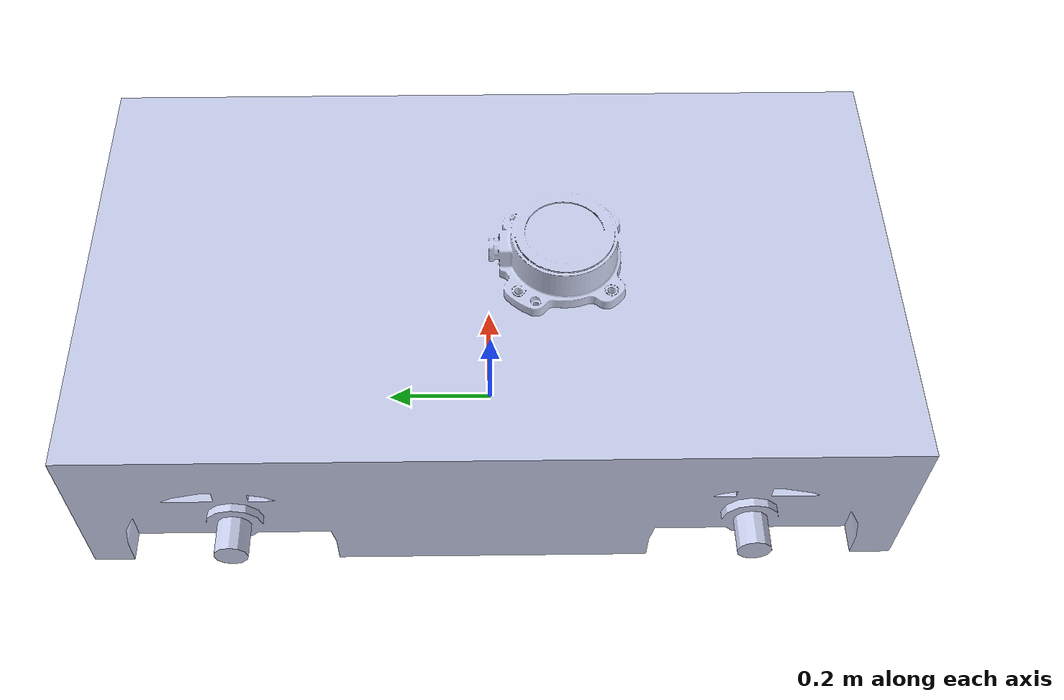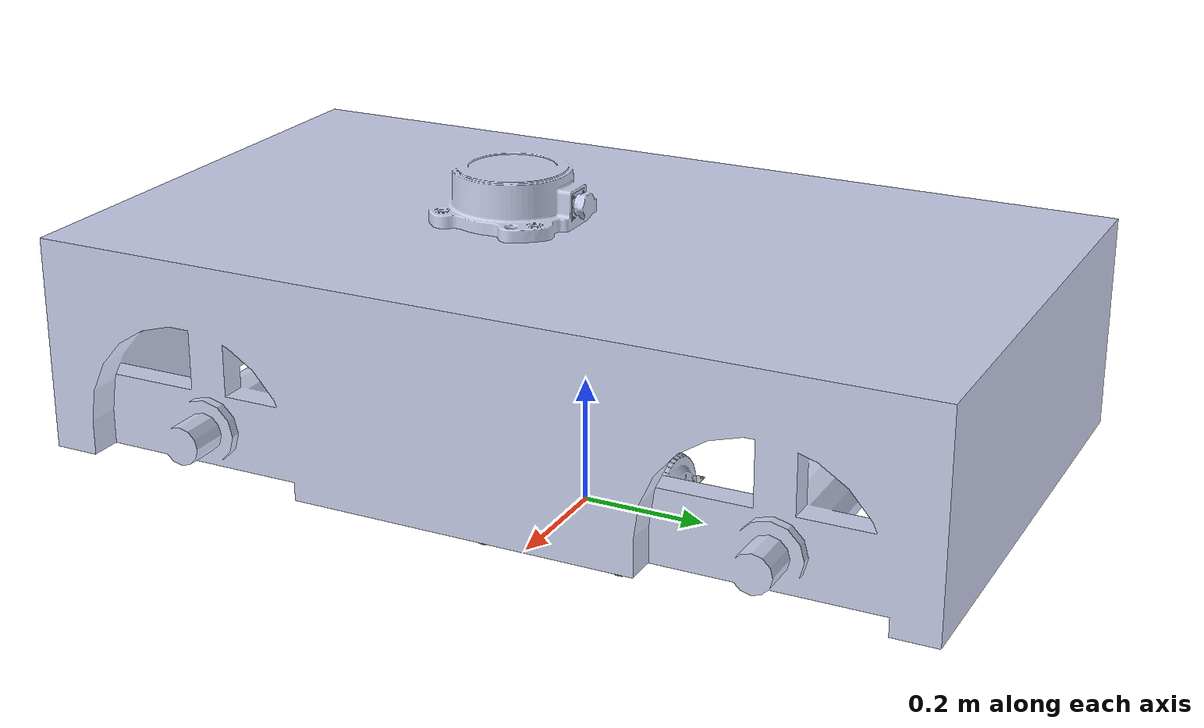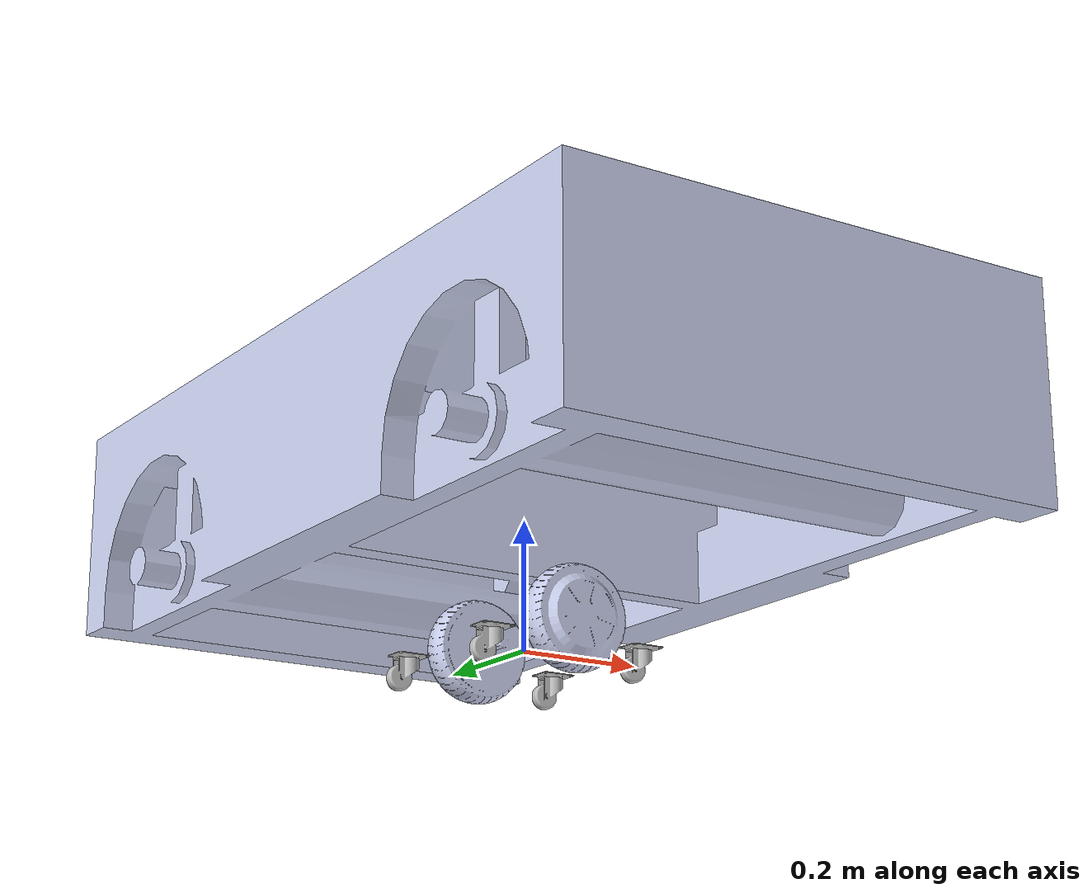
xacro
<?xml version="1.0" ?>
<robot xmlns:xacro="http://www.ros.org/wiki/xacro" name="Robot_urdf">

  <link name="base_link">
  </link>

  <joint name="base_footprint_joint" type="fixed">
    <parent link="base_link"/>
    <child link="base_footprint"/>
    <origin xyz="0 0 0" rpy="0 0 0"/>
  </joint>

  <link name="base_footprint">
  </link>

  <joint name="chassis_joint" type="fixed">
    <parent link="base_link"/>
    <child link="chassis_link"/>
    <origin xyz="0 0 0"/>
  </joint>

  <link
    name="chassis_link">
    <inertial>
      <origin
        xyz="0.00912083979047776 0.000358714426882123 0.425751573589943"
        rpy="0 0 0" />
      <mass
        value="21.9733644667016" />
      <inertia
        ixx="0.358557390766616"
        ixy="0.000472307216723667"
        ixz="6.84397024655851E-05"
        iyy="0.266139102966601"
        iyz="0.000173925654301657"
        izz="0.43074770645242" />
    </inertial>
    <visual>
      <origin
        xyz="0 0 0"
        rpy="0 0 0" />
      <geometry>
        <mesh
          filename="package://robot_description/meshes/base_link.STL" />
      </geometry>
      <material
        name="">
        <color
          rgba="0.792156862745098 0.819607843137255 0.933333333333333 1" />
      </material>
    </visual>
    <collision>
      <origin
        xyz="0 0 0"
        rpy="0 0 0" />
      <geometry>
        <mesh
          filename="package://robot_description/meshes/base_link.STL" />
      </geometry>
    </collision>
  </link>
  <link
    name="left_wheel">
    <inertial>
      <origin
        xyz="1.87773158133453E-10 -7.27151445151231E-06 -0.0301454992417853"
        rpy="0 0 0" />
      <mass
        value="0.958023999456363" />
      <inertia
        ixx="0.00158537256786763"
        ixy="-1.05121947037335E-11"
        ixz="-9.89197150400186E-13"
        iyy="0.00158540696032752"
        iyz="-3.83261379612538E-07"
        izz="0.00270273970228439" />
    </inertial>
    <visual>
      <origin
        xyz="0 0 0"
        rpy="0 0 0" />
      <geometry>
        <mesh
          filename="package://robot_description/meshes/left_wheel.STL" />
      </geometry>
      <material
        name="">
        <color
          rgba="0.792156862745098 0.819607843137255 0.933333333333333 1" />
      </material>
    </visual>
    <collision>
      <origin
        xyz="0 0 0"
        rpy="0 0 0" />
      <geometry>
        <mesh
          filename="package://robot_description/meshes/left_wheel.STL" />
      </geometry>
    </collision>
  </link>
  <joint
    name="left_wheel_joint"
    type="continuous">
    <origin
      xyz="0.000367906570314269 0.164630045584552 0.0242699999999989"
      rpy="-1.5707963267949 0 0" />
    <parent
      link="base_link" />
    <child
      link="left_wheel" />
    <axis
      xyz="0 0 1" />
  </joint>
  <link
    name="right_wheel">
    <inertial>
      <origin
        xyz="-1.8914336763487E-10 7.27151444643304E-06 -0.0301454992409286"
        rpy="0 0 0" />
      <mass
        value="0.958023999456363" />
      <inertia
        ixx="0.00158537256786763"
        ixy="-1.05121937738641E-11"
        ixz="9.89197098731176E-13"
        iyy="0.00158540696032752"
        iyz="3.83261379612405E-07"
        izz="0.00270273970228438" />
    </inertial>
    <visual>
      <origin
        xyz="0 0 0"
        rpy="0 0 0" />
      <geometry>
        <mesh
          filename="package://robot_description/meshes/right_wheel.STL" />
      </geometry>
      <material
        name="">
        <color
          rgba="0.792156862745098 0.819607843137255 0.933333333333333 1" />
      </material>
    </visual>
    <collision>
      <origin
        xyz="0 0 0"
        rpy="0 0 0" />
      <geometry>
        <mesh
          filename="package://robot_description/meshes/right_wheel.STL" />
      </geometry>
    </collision>
  </link>
  <joint
    name="right_wheel_joint"
    type="continuous">
    <origin
      xyz="0.000367906570321569 -0.164114965022657 0.024269999999999"
      rpy="1.5707963267949 0 0" />
    <parent
      link="base_link" />
    <child
      link="right_wheel" />
    <axis
      xyz="0 0 -1" />
  </joint>
  <link
    name="caster_wheel_1">
    <inertial>
      <origin
        xyz="0.00472903838563208 -0.00929162359478673 0.000235637500053454"
        rpy="0 0 0" />
      <mass
        value="0.0310665024207564" />
      <inertia
        ixx="3.53672198737166E-06"
        ixy="1.34508502582928E-07"
        ixz="-4.06236172918232E-09"
        iyy="4.9709352548106E-06"
        iyz="3.29378040398962E-09"
        izz="5.15982616921679E-06" />
    </inertial>
    <visual>
      <origin
        xyz="0 0 0"
        rpy="0 0 0" />
      <geometry>
        <mesh
          filename="package://robot_description/meshes/caster_wheel_1.STL" />
      </geometry>
      <material
        name="">
        <color
          rgba="0.752941176470588 0.752941176470588 0.752941176470588 1" />
      </material>
    </visual>
    <collision>
      <origin
        xyz="0 0 0"
        rpy="0 0 0" />
      <geometry>
        <mesh
          filename="package://robot_description/meshes/caster_wheel_1.STL" />
      </geometry>
    </collision>
  </link>
  <joint
    name="caster_wheel_1_joint"
    type="fixed">
    <origin
      xyz="0.111704172515894 0.115476288745698 -0.035997535443263"
      rpy="-1.5707963267949 0 0" />
    <parent
      link="chassis_link" />
    <child
      link="caster_wheel_1" />
  </joint>
  <link
    name="caster_wheel_2">
    <inertial>
      <origin
        xyz="0.00472903838563206 0.00929162359478675 -0.000235637500053565"
        rpy="0 0 0" />
      <mass
        value="0.0310665024207564" />
      <inertia
        ixx="3.53672198737166E-06"
        ixy="-1.34508502582932E-07"
        ixz="4.06236172918255E-09"
        iyy="4.97093525481059E-06"
        iyz="3.29378040398929E-09"
        izz="5.15982616921679E-06" />
    </inertial>
    <visual>
      <origin
        xyz="0 0 0"
        rpy="0 0 0" />
      <geometry>
        <mesh
          filename="package://robot_description/meshes/caster_wheel_2.STL" />
      </geometry>
      <material
        name="">
        <color
          rgba="0.752941176470588 0.752941176470588 0.752941176470588 1" />
      </material>
    </visual>
    <collision>
      <origin
        xyz="0 0 0"
        rpy="0 0 0" />
      <geometry>
        <mesh
          filename="package://robot_description/meshes/caster_wheel_2.STL" />
      </geometry>
    </collision>
  </link>
  <joint
    name="caster_wheel_2_joint"
    type="fixed">
    <origin
      xyz="0.111704172515896 -0.117523631993671 -0.035997535443263"
      rpy="1.57079632679489 0 0" />
    <parent
      link="chassis_link" />
    <child
      link="caster_wheel_2" />
  </joint>
  <link
    name="caster_wheel_3">
    <inertial>
      <origin
        xyz="0.00472903838563199 -0.00929162359478668 0.000235637500053509"
        rpy="0 0 0" />
      <mass
        value="0.0310665024207564" />
      <inertia
        ixx="3.53672198737166E-06"
        ixy="1.34508502582932E-07"
        ixz="-4.06236172918425E-09"
        iyy="4.97093525481059E-06"
        iyz="3.29378040398968E-09"
        izz="5.1598261692168E-06" />
    </inertial>
    <visual>
      <origin
        xyz="0 0 0"
        rpy="0 0 0" />
      <geometry>
        <mesh
          filename="package://robot_description/meshes/caster_wheel_3.STL" />
      </geometry>
      <material
        name="">
        <color
          rgba="0.752941176470588 0.752941176470588 0.752941176470588 1" />
      </material>
    </visual>
    <collision>
      <origin
        xyz="0 0 0"
        rpy="0 0 0" />
      <geometry>
        <mesh
          filename="package://robot_description/meshes/caster_wheel_3.STL" />
      </geometry>
    </collision>
  </link>
  <joint
    name="caster_wheel_3_joint"
    type="fixed">
    <origin
      xyz="-0.145281750907526 0.115476288745698 -0.035997535443263"
      rpy="-1.5707963267949 0 0" />
    <parent
      link="chassis_link" />
    <child
      link="caster_wheel_3" />
  </joint>
  <link
    name="caster_wheel_4">
    <inertial>
      <origin
        xyz="0.0047290383856321 0.00929162359478675 -0.000235637500053565"
        rpy="0 0 0" />
      <mass
        value="0.0310665024207565" />
      <inertia
        ixx="3.53672198737168E-06"
        ixy="-1.34508502582934E-07"
        ixz="4.06236172918129E-09"
        iyy="4.97093525481061E-06"
        iyz="3.29378040399447E-09"
        izz="5.15982616921681E-06" />
    </inertial>
    <visual>
      <origin
        xyz="0 0 0"
        rpy="0 0 0" />
      <geometry>
        <mesh
          filename="package://robot_description/meshes/caster_wheel_4.STL" />
      </geometry>
      <material
        name="">
        <color
          rgba="0.752941176470588 0.752941176470588 0.752941176470588 1" />
      </material>
    </visual>
    <collision>
      <origin
        xyz="0 0 0"
        rpy="0 0 0" />
      <geometry>
        <mesh
          filename="package://robot_description/meshes/caster_wheel_4.STL" />
      </geometry>
    </collision>
  </link>
  <joint
    name="caster_wheel_4_joint"
    type="fixed">
    <origin
      xyz="-0.145281750907526 -0.11752363199367 -0.035997535443263"
      rpy="1.57079632679489 0 0" />
    <parent
      link="chassis_link" />
    <child
      link="caster_wheel_4" />
  </joint>

</robot>
